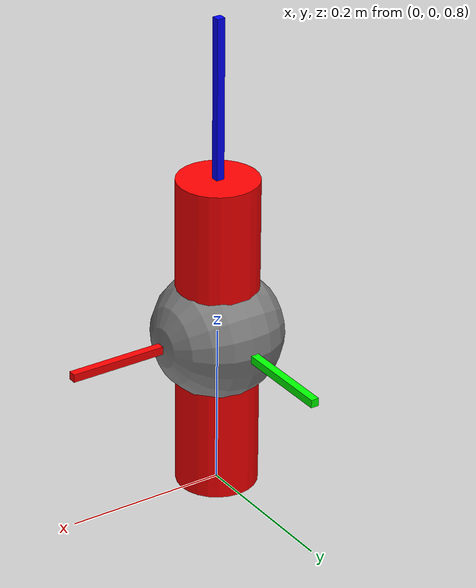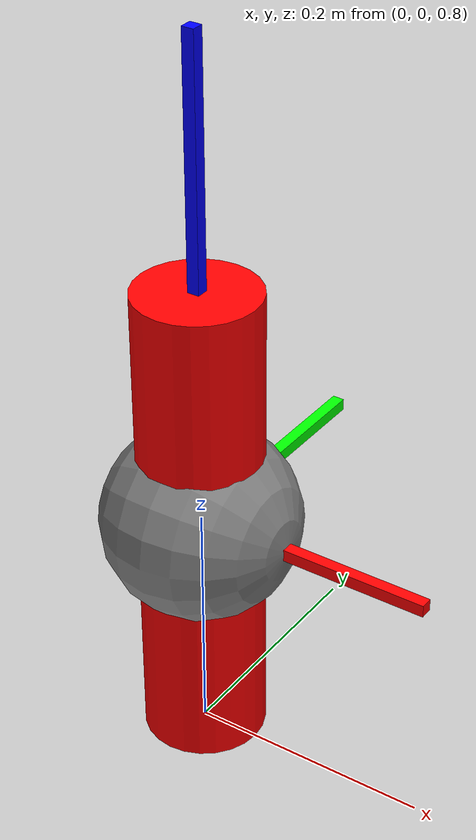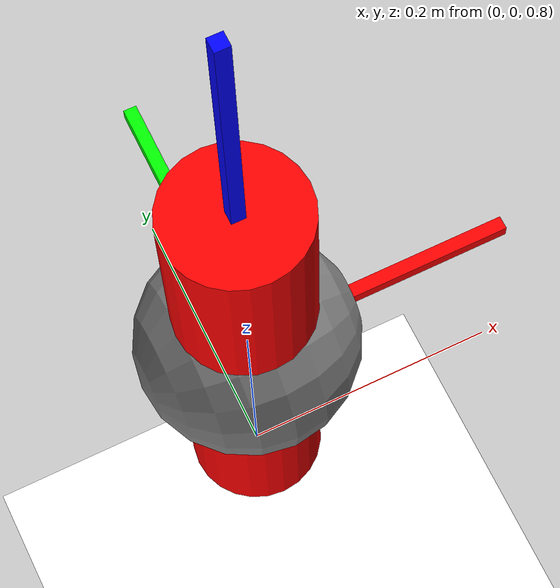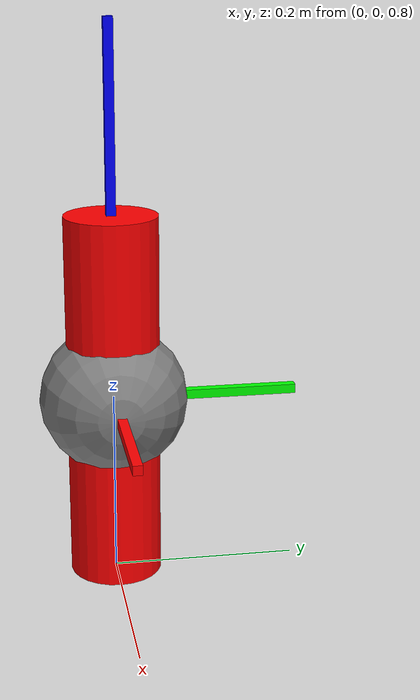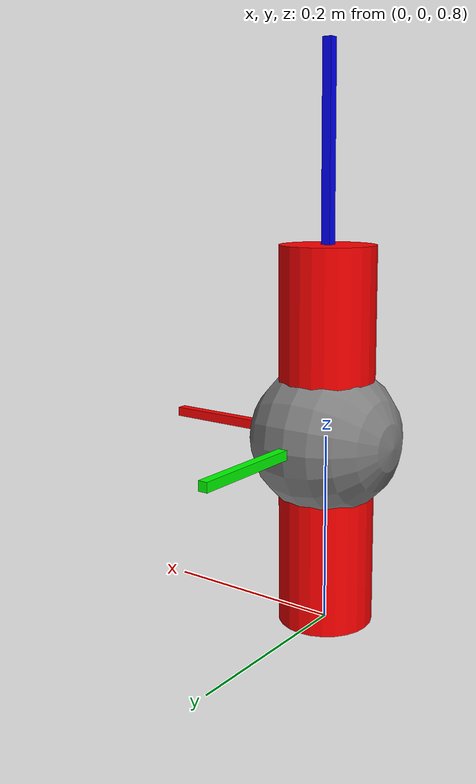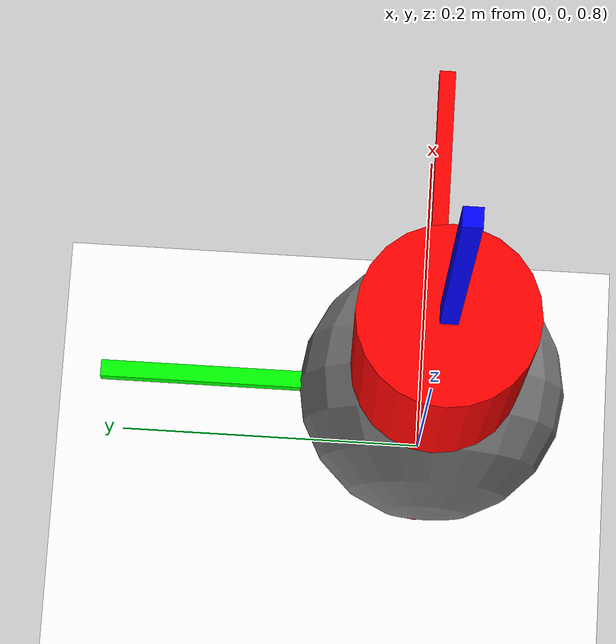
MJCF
<mujoco model="quadrotor0">
	<compiler inertiafromgeom="true" coordinate="local"/>
	<option	timestep="0.001" gravity="0 0 -9.81" density="1" viscosity="1e-5" />
	<worldbody>
		<geom name="floor" pos="0 0 0" size="2 2 .2" type="plane"  conaffinity="1" rgba="1 1 1 1" condim="3"/>
		<body name="quadrotor" pos="0 0 1.0">
			<joint name="root"   type="free" damping="0" armature="0" pos="0 0 0" />

			<!-- Actuator sites to attach actuators, make it invisible -->
            <site name="thrust" type="box" pos="0 0 0"  size="0.035 0.035 0.035"  quat = "1.0 0.0 0.0 0." rgba="0 1 1 0" />
            <geom name="thruster0" type="cylinder" pos="0 0 0" size="0.05 0.2"  quat = "1.0 0.0 0.0 0." rgba="1 0.0 0.0 1" mass = "1"/>

            <!-- Visualization of the coordinate frame -->
			<site name="qcX" type="box" pos="0.1 0.0 0.0" size="0.1 0.005 0.005"  quat = " 1.000  0.0  0.0    0."     rgba="1 0 0 1" />
			<site name="qcY" type="box" pos="0.0 0.1 0.0" size="0.1 0.005 0.005"  quat = " 0.707  0.0  0.0    0.707"  rgba="0 1 0 1" />
			<site name="qcZ" type="box" pos="0.0 0.0 0.2" size="0.2 0.005 0.005"  quat = "-0.707  0.0  0.707  0."     rgba="0 0 1 1" />

			<body name="cart" pos="0 0 0">
				<joint axis="1 0 0" limited="true" name="slider" pos="0 0 0" range="-0.25 0.25" type="slide"/>
				<geom name="cart" pos="0 0 0" quat="0.707 0 0.707 0" size="0.08" type="sphere" mass = "0.01"/>
			</body>
		</body>
	</worldbody>
    <actuator>
		<motor ctrllimited="true" ctrlrange="0.0 20.0" gear="0  0. 1. 0. 0. 0." site="thrust"/>
		<motor ctrllimited="true" ctrlrange="-1.0 1.0" gear="0.5" joint="slider" name="slide"/>
	</actuator>
</mujoco>
